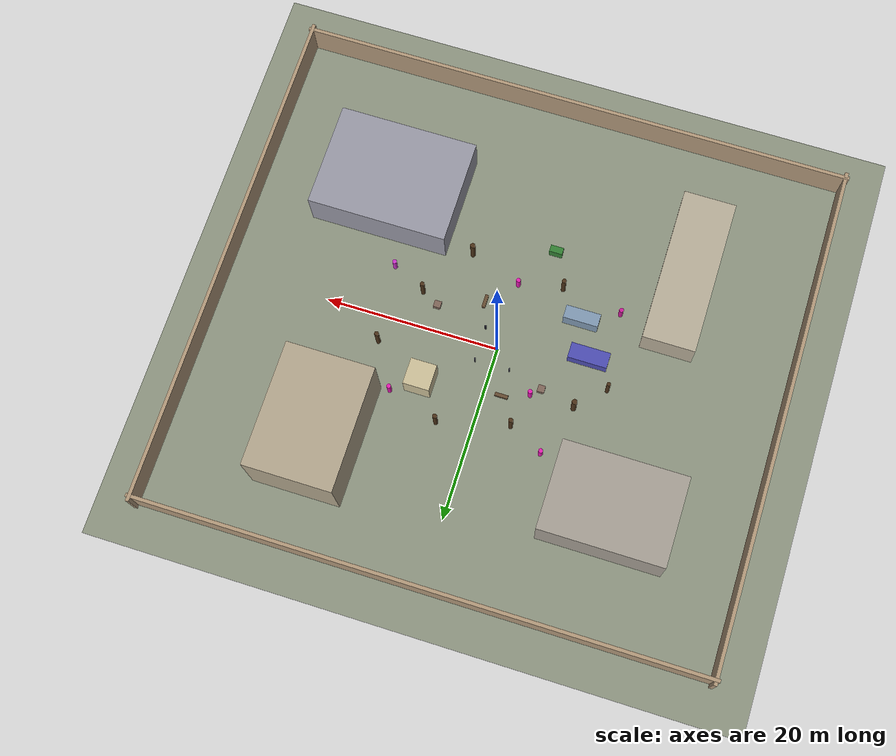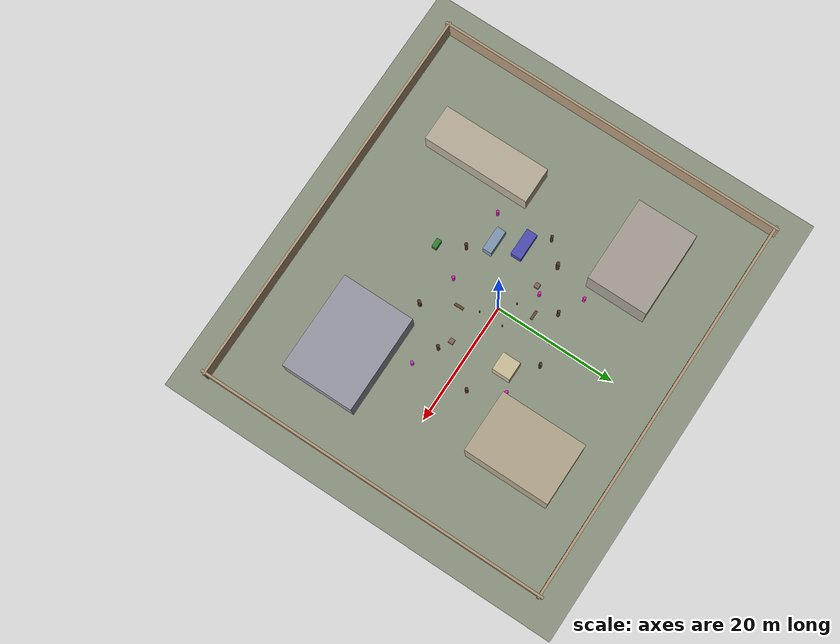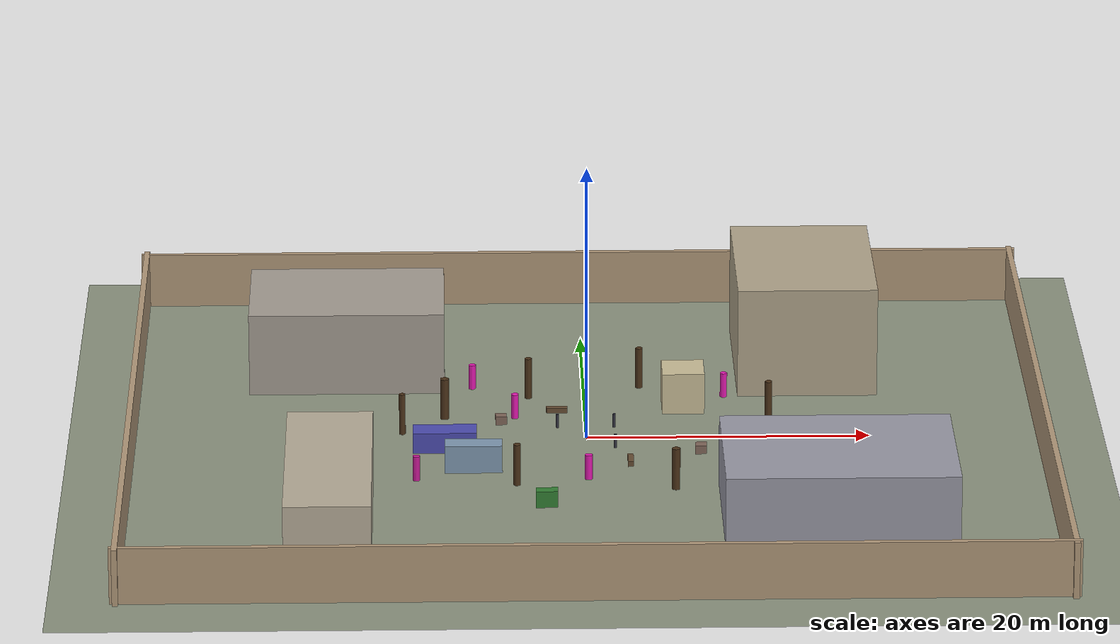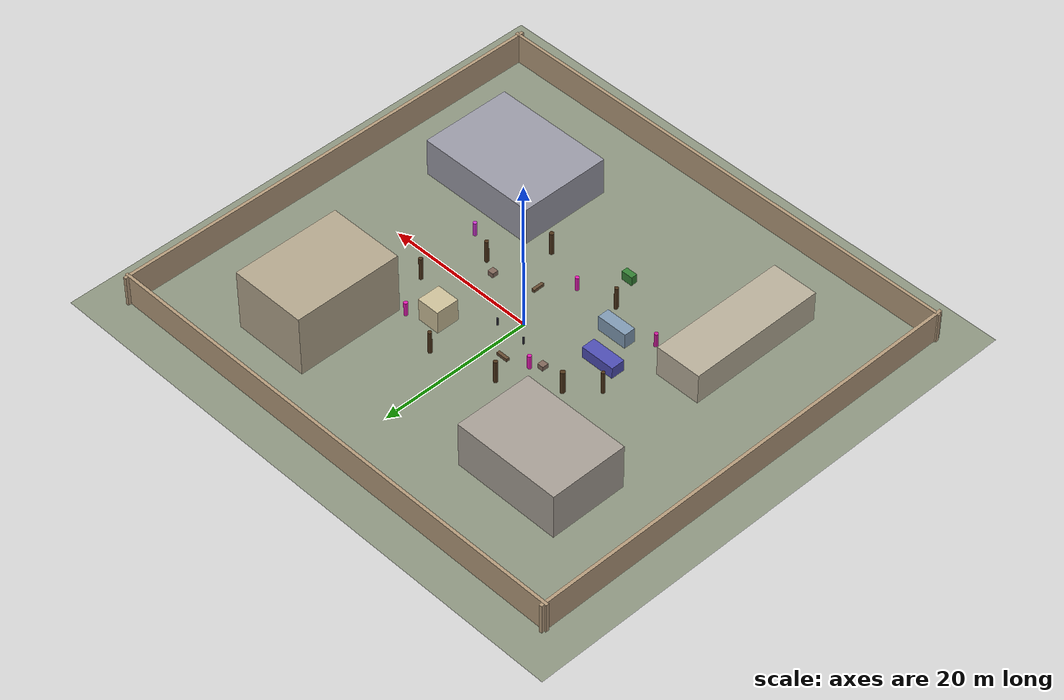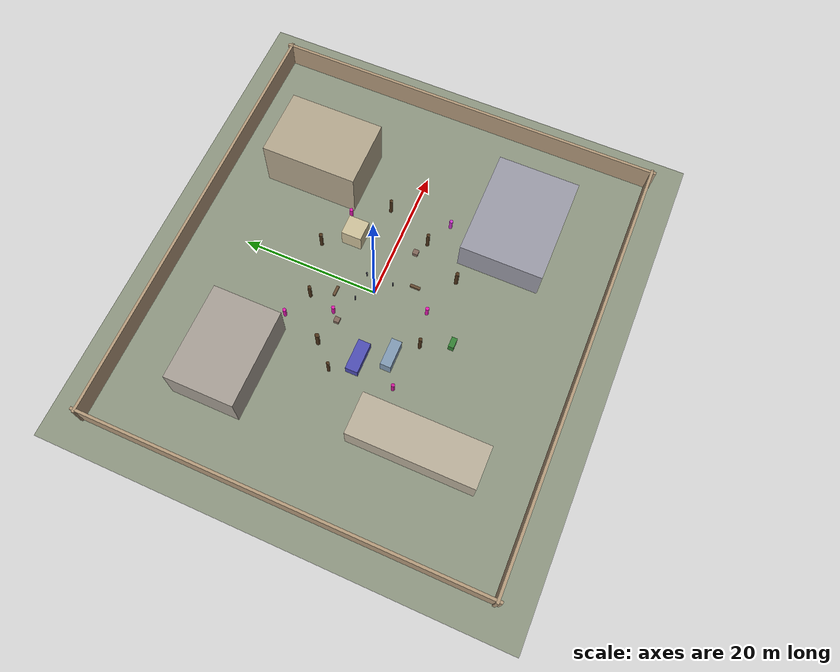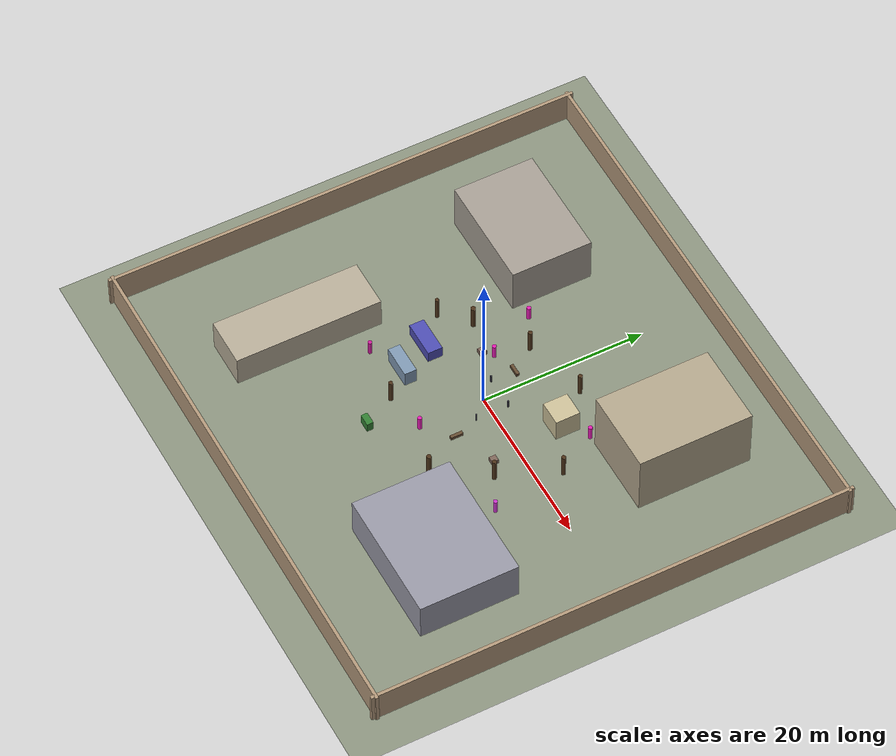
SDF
<sdf version="1.8">
 <world name="urban_search">
  <spherical_coordinates>
   <surface_model>EARTH_WGS84</surface_model>
   <latitude_deg>51.5074</latitude_deg>
   <longitude_deg>-0.1278</longitude_deg>
   <elevation>0</elevation>
   <heading_deg>0</heading_deg>
  </spherical_coordinates>
  <plugin filename="gz-sim-physics-system" name="gz::sim::systems::Physics"/>
  <plugin filename="gz-sim-user-commands-system" name="gz::sim::systems::UserCommands"/>
  <plugin filename="gz-sim-scene-broadcaster-system" name="gz::sim::systems::SceneBroadcaster"/>
  <plugin filename="gz-sim-sensors-system" name="gz::sim::systems::Sensors">
   <render_engine>ogre2</render_engine>
  </plugin>
  <plugin filename="gz-sim-imu-system" name="gz::sim::systems::Imu"/>
  <plugin filename="gz-sim-navsat-system" name="gz::sim::systems::NavSat"/>
  <plugin filename="gz-sim-magnetometer-system" name="gz::sim::systems::Magnetometer"/>
  <plugin filename="gz-sim-air-pressure-system" name="gz::sim::systems::AirPressure"/>
  <light type="directional" name="sun">
   <pose>0 0 30 0 0 0</pose>
   <diffuse>1 0.95 0.85 1</diffuse>
   <specular>0.4 0.4 0.35 1</specular>
   <attenuation>
    <range>1000</range>
    <constant>0.9</constant>
    <linear>0.01</linear>
    <quadratic>0.001</quadratic>
   </attenuation>
   <direction>-0.4 0.2 -0.8</direction>
  </light>
  <model name="ground_plane">
   <static>true</static>
   <link name="link">
    <collision name="col">
     <geometry><plane><normal>0 0 1</normal><size>200 200</size></plane></geometry>
    </collision>
    <visual name="vis">
     <geometry><plane><normal>0 0 1</normal><size>200 200</size></plane></geometry>
     <material><ambient>0.55 0.58 0.5 1</ambient><diffuse>0.55 0.58 0.5 1</diffuse></material>
    </visual>
   </link>
  </model>
  <model name="building_A">
   <static>true</static>
   <pose>-17 14 3 0 0 0</pose>
   <link name="l">
    <collision name="c">
     <geometry><box><size>14 10 6</size></box></geometry>
     <surface><friction><ode><mu>0.05</mu><mu2>0.05</mu2></ode></friction></surface>
    </collision>
    <visual name="v">
     <geometry><box><size>14 10 6</size></box></geometry>
     <material><ambient>0.65 0.62 0.58 1</ambient><diffuse>0.65 0.62 0.58 1</diffuse></material>
    </visual>
   </link>
  </model>
  <model name="building_B">
   <static>true</static>
   <pose>16 15 4 0 0 0</pose>
   <link name="l">
    <collision name="c">
     <geometry><box><size>10 14 8</size></box></geometry>
     <surface><friction><ode><mu>0.05</mu><mu2>0.05</mu2></ode></friction></surface>
    </collision>
    <visual name="v">
     <geometry><box><size>10 14 8</size></box></geometry>
     <material><ambient>0.7 0.65 0.55 1</ambient><diffuse>0.7 0.65 0.55 1</diffuse></material>
    </visual>
   </link>
  </model>
  <model name="building_C">
   <static>true</static>
   <pose>17 -15 2.5 0 0 0</pose>
   <link name="l">
    <collision name="c">
     <geometry><box><size>16 12 5</size></box></geometry>
     <surface><friction><ode><mu>0.05</mu><mu2>0.05</mu2></ode></friction></surface>
    </collision>
    <visual name="v">
     <geometry><box><size>16 12 5</size></box></geometry>
     <material><ambient>0.6 0.6 0.65 1</ambient><diffuse>0.6 0.6 0.65 1</diffuse></material>
    </visual>
   </link>
  </model>
  <model name="building_D">
   <static>true</static>
   <pose>-18 -14 2 0 0 0</pose>
   <link name="l">
    <collision name="c">
     <geometry><box><size>6 18 4</size></box></geometry>
     <surface><friction><ode><mu>0.05</mu><mu2>0.05</mu2></ode></friction></surface>
    </collision>
    <visual name="v">
     <geometry><box><size>6 18 4</size></box></geometry>
     <material><ambient>0.72 0.68 0.6 1</ambient><diffuse>0.72 0.68 0.6 1</diffuse></material>
    </visual>
   </link>
  </model>
  <model name="kiosk_E">
   <static>true</static>
   <pose>7 6 1.5 0 0 0</pose>
   <link name="l">
    <collision name="c">
     <geometry><box><size>3 3 3</size></box></geometry>
     <surface><friction><ode><mu>0.05</mu><mu2>0.05</mu2></ode></friction></surface>
    </collision>
    <visual name="v">
     <geometry><box><size>3 3 3</size></box></geometry>
     <material><ambient>0.8 0.75 0.6 1</ambient><diffuse>0.8 0.75 0.6 1</diffuse></material>
    </visual>
   </link>
  </model>
  <model name="shelter_F">
   <static>true</static>
   <pose>-8 -6 1 0 0 0</pose>
   <link name="l">
    <collision name="c">
     <geometry><box><size>4 1.5 2</size></box></geometry>
     <surface><friction><ode><mu>0.05</mu><mu2>0.05</mu2></ode></friction></surface>
    </collision>
    <visual name="v">
     <geometry><box><size>4 1.5 2</size></box></geometry>
     <material><ambient>0.5 0.6 0.7 1</ambient><diffuse>0.5 0.6 0.7 1</diffuse></material>
    </visual>
   </link>
  </model>
  <model name="tree_1">
   <static>true</static>
   <pose>-4 8 1.5 0 0 0</pose>
   <link name="l">
    <collision name="c">
     <geometry><cylinder><radius>0.25</radius><length>3</length></cylinder></geometry>
     <surface><friction><ode><mu>0.05</mu><mu2>0.05</mu2></ode></friction></surface>
    </collision>
    <visual name="v">
     <geometry><cylinder><radius>0.25</radius><length>3</length></cylinder></geometry>
     <material><ambient>0.3 0.2 0.1 1</ambient><diffuse>0.3 0.2 0.1 1</diffuse></material>
    </visual>
   </link>
  </model>
  <model name="tree_2">
   <static>true</static>
   <pose>4 10 1.5 0 0 0</pose>
   <link name="l">
    <collision name="c">
     <geometry><cylinder><radius>0.25</radius><length>3</length></cylinder></geometry>
     <surface><friction><ode><mu>0.05</mu><mu2>0.05</mu2></ode></friction></surface>
    </collision>
    <visual name="v">
     <geometry><cylinder><radius>0.25</radius><length>3</length></cylinder></geometry>
     <material><ambient>0.3 0.2 0.1 1</ambient><diffuse>0.3 0.2 0.1 1</diffuse></material>
    </visual>
   </link>
  </model>
  <model name="tree_3">
   <static>true</static>
   <pose>-10 4 1.5 0 0 0</pose>
   <link name="l">
    <collision name="c">
     <geometry><cylinder><radius>0.3</radius><length>3</length></cylinder></geometry>
     <surface><friction><ode><mu>0.05</mu><mu2>0.05</mu2></ode></friction></surface>
    </collision>
    <visual name="v">
     <geometry><cylinder><radius>0.3</radius><length>3</length></cylinder></geometry>
     <material><ambient>0.3 0.2 0.1 1</ambient><diffuse>0.3 0.2 0.1 1</diffuse></material>
    </visual>
   </link>
  </model>
  <model name="tree_4">
   <static>true</static>
   <pose>10 -4 1.5 0 0 0</pose>
   <link name="l">
    <collision name="c">
     <geometry><cylinder><radius>0.25</radius><length>3</length></cylinder></geometry>
     <surface><friction><ode><mu>0.05</mu><mu2>0.05</mu2></ode></friction></surface>
    </collision>
    <visual name="v">
     <geometry><cylinder><radius>0.25</radius><length>3</length></cylinder></geometry>
     <material><ambient>0.3 0.2 0.1 1</ambient><diffuse>0.3 0.2 0.1 1</diffuse></material>
    </visual>
   </link>
  </model>
  <model name="tree_5">
   <static>true</static>
   <pose>-5 -9 1.5 0 0 0</pose>
   <link name="l">
    <collision name="c">
     <geometry><cylinder><radius>0.25</radius><length>3</length></cylinder></geometry>
     <surface><friction><ode><mu>0.05</mu><mu2>0.05</mu2></ode></friction></surface>
    </collision>
    <visual name="v">
     <geometry><cylinder><radius>0.25</radius><length>3</length></cylinder></geometry>
     <material><ambient>0.3 0.2 0.1 1</ambient><diffuse>0.3 0.2 0.1 1</diffuse></material>
    </visual>
   </link>
  </model>
  <model name="tree_6">
   <static>true</static>
   <pose>6 -10 1.5 0 0 0</pose>
   <link name="l">
    <collision name="c">
     <geometry><cylinder><radius>0.28</radius><length>3</length></cylinder></geometry>
     <surface><friction><ode><mu>0.05</mu><mu2>0.05</mu2></ode></friction></surface>
    </collision>
    <visual name="v">
     <geometry><cylinder><radius>0.28</radius><length>3</length></cylinder></geometry>
     <material><ambient>0.3 0.2 0.1 1</ambient><diffuse>0.3 0.2 0.1 1</diffuse></material>
    </visual>
   </link>
  </model>
  <model name="tree_7">
   <static>true</static>
   <pose>-13 1 1.5 0 0 0</pose>
   <link name="l">
    <collision name="c">
     <geometry><cylinder><radius>0.22</radius><length>3</length></cylinder></geometry>
     <surface><friction><ode><mu>0.05</mu><mu2>0.05</mu2></ode></friction></surface>
    </collision>
    <visual name="v">
     <geometry><cylinder><radius>0.22</radius><length>3</length></cylinder></geometry>
     <material><ambient>0.3 0.2 0.1 1</ambient><diffuse>0.3 0.2 0.1 1</diffuse></material>
    </visual>
   </link>
  </model>
  <model name="tree_8">
   <static>true</static>
   <pose>13 3 1.5 0 0 0</pose>
   <link name="l">
    <collision name="c">
     <geometry><cylinder><radius>0.25</radius><length>3</length></cylinder></geometry>
     <surface><friction><ode><mu>0.05</mu><mu2>0.05</mu2></ode></friction></surface>
    </collision>
    <visual name="v">
     <geometry><cylinder><radius>0.25</radius><length>3</length></cylinder></geometry>
     <material><ambient>0.3 0.2 0.1 1</ambient><diffuse>0.3 0.2 0.1 1</diffuse></material>
    </visual>
   </link>
  </model>
  <model name="bench_1">
   <static>true</static>
   <pose>-2 5 0.2 0 0 0</pose>
   <link name="l">
    <collision name="c">
     <geometry><box><size>1.5 0.4 0.4</size></box></geometry>
     <surface><friction><ode><mu>0.05</mu><mu2>0.05</mu2></ode></friction></surface>
    </collision>
    <visual name="v">
     <geometry><box><size>1.5 0.4 0.4</size></box></geometry>
     <material><ambient>0.4 0.3 0.2 1</ambient><diffuse>0.4 0.3 0.2 1</diffuse></material>
    </visual>
   </link>
  </model>
  <model name="bench_2">
   <static>true</static>
   <pose>3 -5 0.2 0 0 1.5708</pose>
   <link name="l">
    <collision name="c">
     <geometry><box><size>1.5 0.4 0.4</size></box></geometry>
     <surface><friction><ode><mu>0.05</mu><mu2>0.05</mu2></ode></friction></surface>
    </collision>
    <visual name="v">
     <geometry><box><size>1.5 0.4 0.4</size></box></geometry>
     <material><ambient>0.4 0.3 0.2 1</ambient><diffuse>0.4 0.3 0.2 1</diffuse></material>
    </visual>
   </link>
  </model>
  <model name="planter_1">
   <static>true</static>
   <pose>-6 3 0.3 0 0 0</pose>
   <link name="l">
    <collision name="c">
     <geometry><box><size>0.8 0.8 0.6</size></box></geometry>
     <surface><friction><ode><mu>0.05</mu><mu2>0.05</mu2></ode></friction></surface>
    </collision>
    <visual name="v">
     <geometry><box><size>0.8 0.8 0.6</size></box></geometry>
     <material><ambient>0.5 0.4 0.35 1</ambient><diffuse>0.5 0.4 0.35 1</diffuse></material>
    </visual>
   </link>
  </model>
  <model name="planter_2">
   <static>true</static>
   <pose>8 -3 0.3 0 0 0</pose>
   <link name="l">
    <collision name="c">
     <geometry><box><size>0.8 0.8 0.6</size></box></geometry>
     <surface><friction><ode><mu>0.05</mu><mu2>0.05</mu2></ode></friction></surface>
    </collision>
    <visual name="v">
     <geometry><box><size>0.8 0.8 0.6</size></box></geometry>
     <material><ambient>0.5 0.4 0.35 1</ambient><diffuse>0.5 0.4 0.35 1</diffuse></material>
    </visual>
   </link>
  </model>
  <model name="bollard_1">
   <static>true</static>
   <pose>2 2 0.5 0 0 0</pose>
   <link name="l">
    <collision name="c">
     <geometry><cylinder><radius>0.1</radius><length>1</length></cylinder></geometry>
     <surface><friction><ode><mu>0.05</mu><mu2>0.05</mu2></ode></friction></surface>
    </collision>
    <visual name="v">
     <geometry><cylinder><radius>0.1</radius><length>1</length></cylinder></geometry>
     <material><ambient>0.2 0.2 0.25 1</ambient><diffuse>0.2 0.2 0.25 1</diffuse></material>
    </visual>
   </link>
  </model>
  <model name="bollard_2">
   <static>true</static>
   <pose>-2 2 0.5 0 0 0</pose>
   <link name="l">
    <collision name="c">
     <geometry><cylinder><radius>0.1</radius><length>1</length></cylinder></geometry>
     <surface><friction><ode><mu>0.05</mu><mu2>0.05</mu2></ode></friction></surface>
    </collision>
    <visual name="v">
     <geometry><cylinder><radius>0.1</radius><length>1</length></cylinder></geometry>
     <material><ambient>0.2 0.2 0.25 1</ambient><diffuse>0.2 0.2 0.25 1</diffuse></material>
    </visual>
   </link>
  </model>
  <model name="bollard_3">
   <static>true</static>
   <pose>2 -2 0.5 0 0 0</pose>
   <link name="l">
    <collision name="c">
     <geometry><cylinder><radius>0.1</radius><length>1</length></cylinder></geometry>
     <surface><friction><ode><mu>0.05</mu><mu2>0.05</mu2></ode></friction></surface>
    </collision>
    <visual name="v">
     <geometry><cylinder><radius>0.1</radius><length>1</length></cylinder></geometry>
     <material><ambient>0.2 0.2 0.25 1</ambient><diffuse>0.2 0.2 0.25 1</diffuse></material>
    </visual>
   </link>
  </model>
  <model name="parked_car">
   <static>true</static>
   <pose>-10 -2 0.75 0 0 0</pose>
   <link name="l">
    <collision name="c">
     <geometry><box><size>4.5 1.8 1.5</size></box></geometry>
     <surface><friction><ode><mu>0.05</mu><mu2>0.05</mu2></ode></friction></surface>
    </collision>
    <visual name="v">
     <geometry><box><size>4.5 1.8 1.5</size></box></geometry>
     <material><ambient>0.3 0.3 0.7 1</ambient><diffuse>0.3 0.3 0.7 1</diffuse></material>
    </visual>
   </link>
  </model>
  <model name="dumpster">
   <static>true</static>
   <pose>-3 -13 0.6 0 0 0</pose>
   <link name="l">
    <collision name="c">
     <geometry><box><size>1.5 0.8 1.2</size></box></geometry>
     <surface><friction><ode><mu>0.05</mu><mu2>0.05</mu2></ode></friction></surface>
    </collision>
    <visual name="v">
     <geometry><box><size>1.5 0.8 1.2</size></box></geometry>
     <material><ambient>0.2 0.5 0.2 1</ambient><diffuse>0.2 0.5 0.2 1</diffuse></material>
    </visual>
   </link>
  </model>
  <model name="pedestrian_1">
   <pose>-5 4 0.9 0 0 0</pose>
   <link name="body">
    <inertial>
     <mass>70</mass>
     <inertia><ixx>5</ixx><ixy>0</ixy><ixz>0</ixz><iyy>5</iyy><iyz>0</iyz><izz>2</izz></inertia>
    </inertial>
    <collision name="col">
     <geometry><cylinder><radius>0.25</radius><length>1.8</length></cylinder></geometry>
     <surface><friction><ode><mu>0.05</mu><mu2>0.05</mu2></ode></friction></surface>
    </collision>
    <visual name="vis">
     <geometry><cylinder><radius>0.25</radius><length>1.8</length></cylinder></geometry>
     <material><ambient>0.9 0.1 0.7 1</ambient><diffuse>0.9 0.1 0.7 1</diffuse></material>
    </visual>
   </link>
   <plugin filename="gz-sim-trajectory-follower-system" name="gz::sim::systems::TrajectoryFollower">
    <link_name>body</link_name>
    <loop>true</loop>
    <force>150</force>
    <torque>30</torque>
    <waypoints>
     <waypoint>5 4</waypoint>
     <waypoint>5 12</waypoint>
     <waypoint>-5 12</waypoint>
     <waypoint>-5 4</waypoint>
    </waypoints>
   </plugin>
  </model>
  <model name="pedestrian_2">
   <pose>10 8 0.9 0 0 0</pose>
   <link name="body">
    <inertial>
     <mass>70</mass>
     <inertia><ixx>5</ixx><ixy>0</ixy><ixz>0</ixz><iyy>5</iyy><iyz>0</iyz><izz>2</izz></inertia>
    </inertial>
    <collision name="col">
     <geometry><cylinder><radius>0.25</radius><length>1.8</length></cylinder></geometry>
     <surface><friction><ode><mu>0.05</mu><mu2>0.05</mu2></ode></friction></surface>
    </collision>
    <visual name="vis">
     <geometry><cylinder><radius>0.25</radius><length>1.8</length></cylinder></geometry>
     <material><ambient>0.9 0.1 0.7 1</ambient><diffuse>0.9 0.1 0.7 1</diffuse></material>
    </visual>
   </link>
   <plugin filename="gz-sim-trajectory-follower-system" name="gz::sim::systems::TrajectoryFollower">
    <link_name>body</link_name>
    <loop>true</loop>
    <force>150</force>
    <torque>30</torque>
    <waypoints><waypoint>10 12</waypoint><waypoint>10 -8</waypoint></waypoints>
   </plugin>
  </model>
  <model name="pedestrian_3">
   <pose>-12 -8 0.9 0 0 0</pose>
   <link name="body">
    <inertial>
     <mass>70</mass>
     <inertia><ixx>5</ixx><ixy>0</ixy><ixz>0</ixz><iyy>5</iyy><iyz>0</iyz><izz>2</izz></inertia>
    </inertial>
    <collision name="col">
     <geometry><cylinder><radius>0.25</radius><length>1.8</length></cylinder></geometry>
     <surface><friction><ode><mu>0.05</mu><mu2>0.05</mu2></ode></friction></surface>
    </collision>
    <visual name="vis">
     <geometry><cylinder><radius>0.25</radius><length>1.8</length></cylinder></geometry>
     <material><ambient>0.8 0.1 0.6 1</ambient><diffuse>0.8 0.1 0.6 1</diffuse></material>
    </visual>
   </link>
   <plugin filename="gz-sim-trajectory-follower-system" name="gz::sim::systems::TrajectoryFollower">
    <link_name>body</link_name>
    <loop>true</loop>
    <force>150</force>
    <torque>30</torque>
    <waypoints><waypoint>-12 -12</waypoint><waypoint>-12 5</waypoint></waypoints>
   </plugin>
  </model>
  <model name="pedestrian_4">
   <pose>0 -8 0.9 0 0 0</pose>
   <link name="body">
    <inertial>
     <mass>70</mass>
     <inertia><ixx>5</ixx><ixy>0</ixy><ixz>0</ixz><iyy>5</iyy><iyz>0</iyz><izz>2</izz></inertia>
    </inertial>
    <collision name="col">
     <geometry><cylinder><radius>0.25</radius><length>1.8</length></cylinder></geometry>
     <surface><friction><ode><mu>0.05</mu><mu2>0.05</mu2></ode></friction></surface>
    </collision>
    <visual name="vis">
     <geometry><cylinder><radius>0.25</radius><length>1.8</length></cylinder></geometry>
     <material><ambient>0.9 0.1 0.7 1</ambient><diffuse>0.9 0.1 0.7 1</diffuse></material>
    </visual>
   </link>
   <plugin filename="gz-sim-trajectory-follower-system" name="gz::sim::systems::TrajectoryFollower">
    <link_name>body</link_name>
    <loop>true</loop>
    <force>150</force>
    <torque>30</torque>
    <waypoints>
     <waypoint>5 -8</waypoint>
     <waypoint>8 -8</waypoint>
     <waypoint>8 0</waypoint>
     <waypoint>0 0</waypoint>
    </waypoints>
   </plugin>
  </model>
  <model name="pedestrian_5">
   <pose>-8 10 0.9 0 0 0</pose>
   <link name="body">
    <inertial>
     <mass>70</mass>
     <inertia><ixx>5</ixx><ixy>0</ixy><ixz>0</ixz><iyy>5</iyy><iyz>0</iyz><izz>2</izz></inertia>
    </inertial>
    <collision name="col">
     <geometry><cylinder><radius>0.25</radius><length>1.8</length></cylinder></geometry>
     <surface><friction><ode><mu>0.05</mu><mu2>0.05</mu2></ode></friction></surface>
    </collision>
    <visual name="vis">
     <geometry><cylinder><radius>0.25</radius><length>1.8</length></cylinder></geometry>
     <material><ambient>0.9 0.1 0.7 1</ambient><diffuse>0.9 0.1 0.7 1</diffuse></material>
    </visual>
   </link>
   <plugin filename="gz-sim-trajectory-follower-system" name="gz::sim::systems::TrajectoryFollower">
    <link_name>body</link_name>
    <loop>true</loop>
    <force>150</force>
    <torque>30</torque>
    <waypoints><waypoint>-8 14</waypoint><waypoint>2 10</waypoint></waypoints>
   </plugin>
  </model>
  <model name="pedestrian_6">
   <pose>14 -6 0.9 0 0 0</pose>
   <link name="body">
    <inertial>
     <mass>70</mass>
     <inertia><ixx>5</ixx><ixy>0</ixy><ixz>0</ixz><iyy>5</iyy><iyz>0</iyz><izz>2</izz></inertia>
    </inertial>
    <collision name="col">
     <geometry><cylinder><radius>0.25</radius><length>1.8</length></cylinder></geometry>
     <surface><friction><ode><mu>0.05</mu><mu2>0.05</mu2></ode></friction></surface>
    </collision>
    <visual name="vis">
     <geometry><cylinder><radius>0.25</radius><length>1.8</length></cylinder></geometry>
     <material><ambient>0.8 0.2 0.8 1</ambient><diffuse>0.8 0.2 0.8 1</diffuse></material>
    </visual>
   </link>
   <plugin filename="gz-sim-trajectory-follower-system" name="gz::sim::systems::TrajectoryFollower">
    <link_name>body</link_name>
    <loop>true</loop>
    <force>150</force>
    <torque>30</torque>
    <waypoints><waypoint>14 -8</waypoint><waypoint>14 8</waypoint></waypoints>
   </plugin>
  </model>
  <model name="perimeter_wall_north">
   <static>true</static>
   <pose>0 28 2 0 0 0</pose>
   <link name="link">
    <collision name="col"><geometry><box><size>64.8 0.4 4</size></box></geometry></collision>
    <visual name="vis">
     <geometry><box><size>64.8 0.4 4</size></box></geometry>
     <material><ambient>0.70 0.60 0.48 1</ambient><diffuse>0.70 0.60 0.48 1</diffuse></material>
    </visual>
   </link>
  </model>
  <model name="perimeter_wall_south">
   <static>true</static>
   <pose>0 -30 2 0 0 0</pose>
   <link name="link">
    <collision name="col"><geometry><box><size>64.8 0.4 4</size></box></geometry></collision>
    <visual name="vis">
     <geometry><box><size>64.8 0.4 4</size></box></geometry>
     <material><ambient>0.70 0.60 0.48 1</ambient><diffuse>0.70 0.60 0.48 1</diffuse></material>
    </visual>
   </link>
  </model>
  <model name="perimeter_wall_east">
   <static>true</static>
   <pose>32 -1 2 0 0 0</pose>
   <link name="link">
    <collision name="col"><geometry><box><size>0.4 59.2 4</size></box></geometry></collision>
    <visual name="vis">
     <geometry><box><size>0.4 59.2 4</size></box></geometry>
     <material><ambient>0.70 0.60 0.48 1</ambient><diffuse>0.70 0.60 0.48 1</diffuse></material>
    </visual>
   </link>
  </model>
  <model name="perimeter_wall_west">
   <static>true</static>
   <pose>-32 -1 2 0 0 0</pose>
   <link name="link">
    <collision name="col"><geometry><box><size>0.4 59.2 4</size></box></geometry></collision>
    <visual name="vis">
     <geometry><box><size>0.4 59.2 4</size></box></geometry>
     <material><ambient>0.70 0.60 0.48 1</ambient><diffuse>0.70 0.60 0.48 1</diffuse></material>
    </visual>
   </link>
  </model>
 </world>
</sdf>
